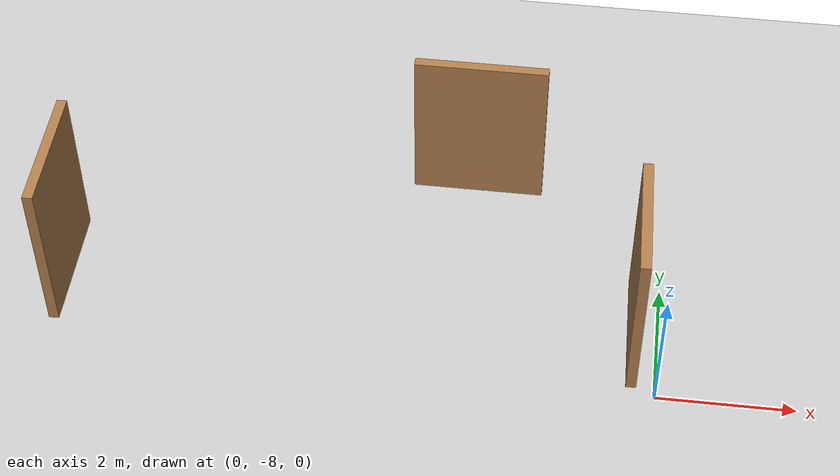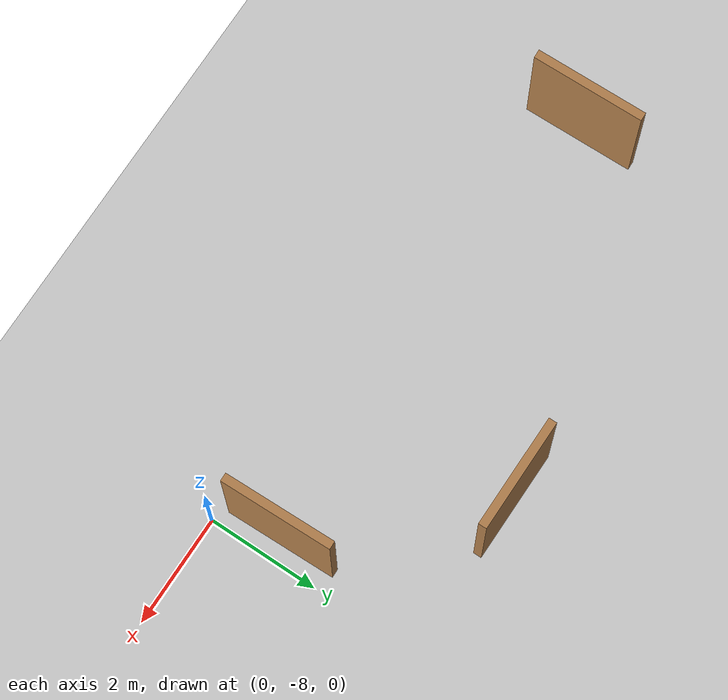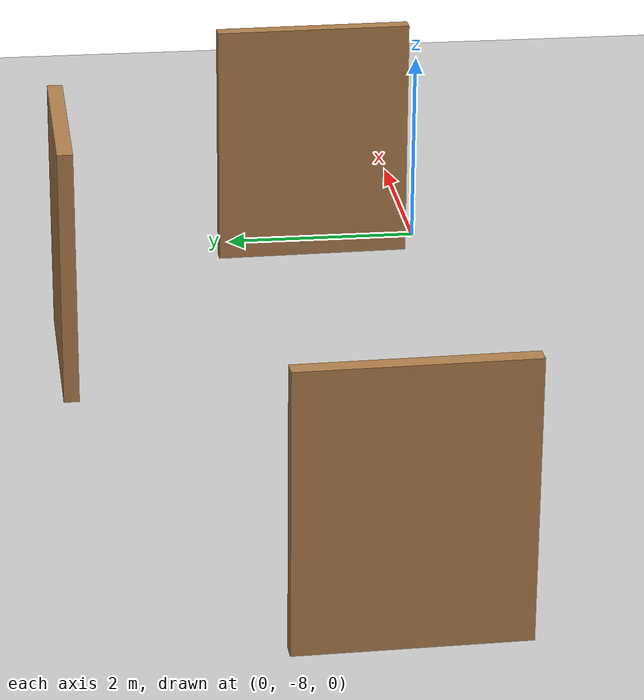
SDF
<sdf version="1.6">
 <world name="default">
  <model name="ground_plane">
   <static>1</static>
   <link name="link">
    <collision name="collision">
     <geometry><plane><normal>0 0 1</normal><size>100 100</size></plane></geometry>
     <surface><friction><ode><mu>100</mu><mu2>50</mu2></ode></friction></surface>
    </collision>
    <visual name="visual">
     <cast_shadows>0</cast_shadows>
     <geometry><plane><normal>0 0 1</normal><size>100 100</size></plane></geometry>
     <material>
      <script><uri>file://media/materials/scripts/gazebo.material</uri><name>Gazebo/Grey</name></script>
     </material>
    </visual>
   </link>
  </model>
  <model name="tr_maze_lay_1_clone_9_clone_0">
   <pose>-0.361756 -6.85554 0 0 0 -1.549</pose>
   <link name="Wall_21">
    <collision name="Wall_21_Collision">
     <geometry><box><size>2 0.15 2.5</size></box></geometry>
     <pose>0 0 1.25 0 -0 0</pose>
    </collision>
    <visual name="Wall_21_Visual">
     <pose>0 0 1.25 0 -0 0</pose>
     <geometry><box><size>2 0.15 2.5</size></box></geometry>
     <material>
      <script><uri>file://media/materials/scripts/gazebo.material</uri><name>Gazebo/Wood</name></script>
      <ambient>1 1 1 1</ambient>
     </material>
    </visual>
    <pose>0 0 0 0 -0 3.14159</pose>
   </link>
   <static>1</static>
  </model>
  <model name="tr_maze_lay_1_clone_17">
   <pose>-2.90837 -4.10766 0 0 -0 0</pose>
   <link name="Wall_21">
    <collision name="Wall_21_Collision">
     <geometry><box><size>2 0.15 2.5</size></box></geometry>
     <pose>0 0 1.25 0 -0 0</pose>
    </collision>
    <visual name="Wall_21_Visual">
     <pose>0 0 1.25 0 -0 0</pose>
     <geometry><box><size>2 0.15 2.5</size></box></geometry>
     <material>
      <script><uri>file://media/materials/scripts/gazebo.material</uri><name>Gazebo/Wood</name></script>
      <ambient>1 1 1 1</ambient>
     </material>
    </visual>
    <pose>0 0 0 0 -0 3.14159</pose>
   </link>
   <static>1</static>
  </model>
  <model name="tr_maze_lay_1_clone_5_clone_3_clone_0">
   <pose>-8.85035 -6.59353 0 0 0 -1.549</pose>
   <link name="Wall_21">
    <collision name="Wall_21_Collision">
     <geometry><box><size>2 0.15 2.5</size></box></geometry>
     <pose>0 0 1.25 0 -0 0</pose>
    </collision>
    <visual name="Wall_21_Visual">
     <pose>0 0 1.25 0 -0 0</pose>
     <geometry><box><size>2 0.15 2.5</size></box></geometry>
     <material>
      <script><uri>file://media/materials/scripts/gazebo.material</uri><name>Gazebo/Wood</name></script>
      <ambient>1 1 1 1</ambient>
     </material>
    </visual>
    <pose>0 0 0 0 -0 3.14159</pose>
   </link>
   <static>1</static>
  </model>
 </world>
</sdf>
